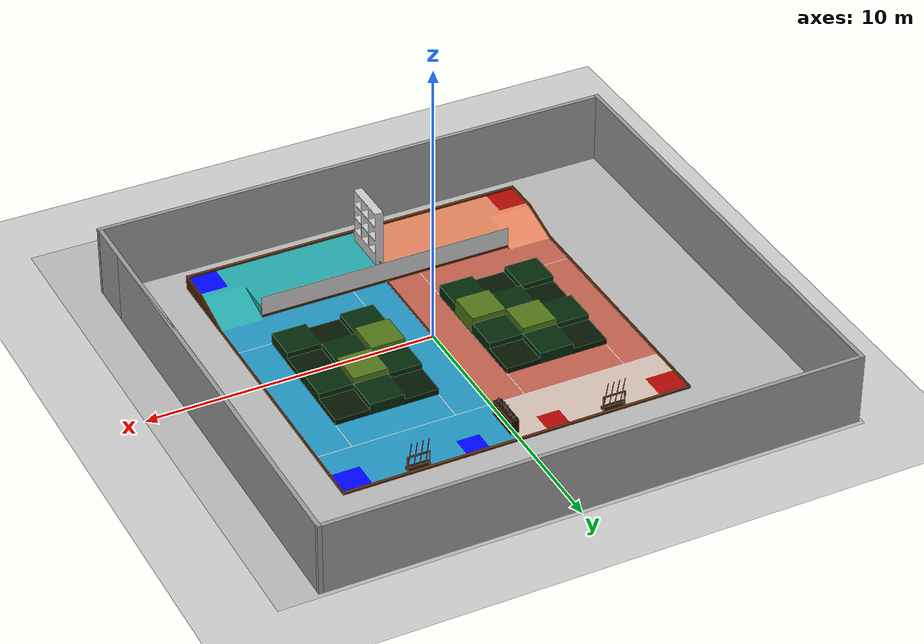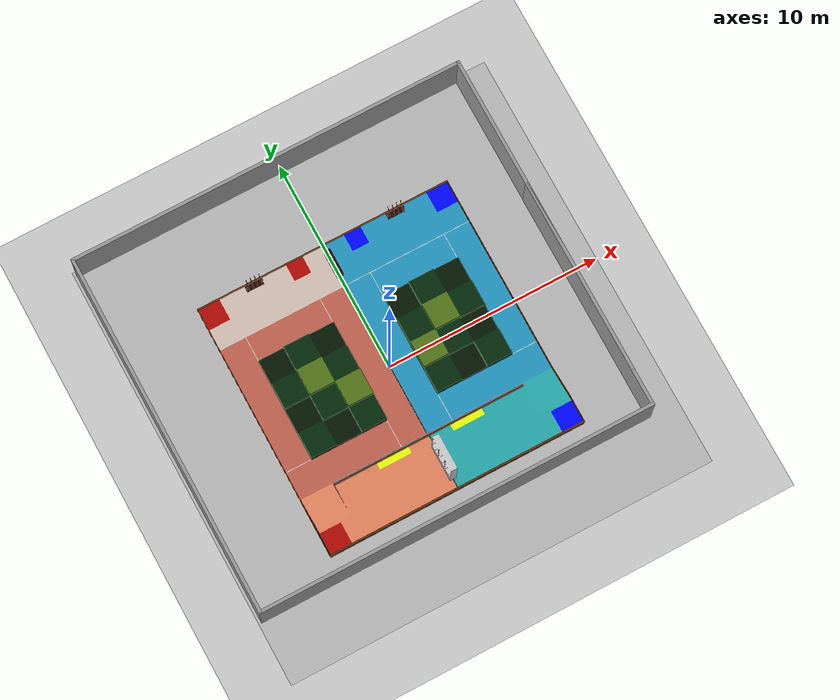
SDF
<sdf version="1.7">
 <world name="default">
  <light name="sun" type="directional">
   <pose>0 0 10 0 -0 0</pose>
   <diffuse>0.8 0.8 0.8 1</diffuse>
   <specular>0.2 0.2 0.2 1</specular>
   <attenuation>
    <range>1000</range>
    <constant>0.9</constant>
    <linear>0.01</linear>
    <quadratic>0.001</quadratic>
   </attenuation>
   <direction>-0.5 0.1 -0.9</direction>
   <spot><inner_angle>0</inner_angle><outer_angle>0</outer_angle><falloff>0</falloff></spot>
  </light>
  <model name="ground_plane">
   <static>1</static>
   <link name="link">
    <collision name="collision">
     <geometry><plane><normal>0 0 1</normal><size>100 100</size></plane></geometry>
     <surface><friction><ode><mu>100</mu><mu2>50</mu2></ode></friction></surface>
    </collision>
    <visual name="visual">
     <cast_shadows>0</cast_shadows>
     <geometry><plane><normal>0 0 1</normal><size>100 100</size></plane></geometry>
     <material>
      <script><uri>file://media/materials/scripts/gazebo.material</uri><name>Gazebo/Grey</name></script>
     </material>
    </visual>
   </link>
  </model>
  <gravity>0 0 -9.8</gravity>
  <magnetic_field>6e-06 2.3e-05 -4.2e-05</magnetic_field>
  <atmosphere type="adiabatic"/>
  <physics type="ode">
   <max_step_size>0.001</max_step_size>
   <real_time_factor>1</real_time_factor>
   <real_time_update_rate>1000</real_time_update_rate>
  </physics>
  <scene><ambient>0.4 0.4 0.4 1</ambient><background>0.7 0.7 0.7 1</background><shadows>1</shadows></scene>
  <audio><device>default</device></audio>
  <spherical_coordinates>
   <surface_model>EARTH_WGS84</surface_model>
   <latitude_deg>0</latitude_deg>
   <longitude_deg>0</longitude_deg>
   <elevation>0</elevation>
   <heading_deg>0</heading_deg>
  </spherical_coordinates>
  <model name="robocon2026_map_foreset">
   <link name="link_0">
    <inertial>
     <mass>1</mass>
     <inertia>
      <ixx>0.166667</ixx>
      <ixy>0</ixy>
      <ixz>0</ixz>
      <iyy>0.166667</iyy>
      <iyz>0</iyz>
      <izz>0.166667</izz>
     </inertia>
    </inertial>
    <visual name="visual">
     <pose>0 0 0.001 0 -0 0</pose>
     <geometry>
      <mesh>
       <uri>/home/sentry_ws/src/rm_simulation/pb_rm_simulation/world/xzx_gazebo/robocon2026map_without_foreset_new.dae</uri>
       <scale>1 1 1</scale>
      </mesh>
     </geometry>
    </visual>
    <collision name="collision">
     <geometry>
      <mesh>
       <uri>/home/sentry_ws/src/rm_simulation/pb_rm_simulation/world/xzx_gazebo/robocon2026map_without_foreset_new.dae</uri>
       <scale>1 1 1</scale>
      </mesh>
     </geometry>
     <surface>
      <friction>
       <ode><mu>1</mu><mu2>1</mu2><fdir1>0 0 0</fdir1><slip1>0</slip1><slip2>0</slip2></ode>
       <torsional>
        <coefficient>1</coefficient>
        <patch_radius>0</patch_radius>
        <surface_radius>0</surface_radius>
        <use_patch_radius>1</use_patch_radius>
        <ode><slip>0</slip></ode>
       </torsional>
      </friction>
      <bounce><restitution_coefficient>0</restitution_coefficient><threshold>1e+06</threshold></bounce>
      <contact>
       <collide_without_contact>0</collide_without_contact>
       <collide_without_contact_bitmask>1</collide_without_contact_bitmask>
       <collide_bitmask>1</collide_bitmask>
       <ode>
        <soft_cfm>0</soft_cfm>
        <soft_erp>0.2</soft_erp>
        <kp>1e+13</kp>
        <kd>1</kd>
        <max_vel>0.01</max_vel>
        <min_depth>0</min_depth>
       </ode>
       <bullet>
        <split_impulse>1</split_impulse>
        <split_impulse_penetration_threshold>-0.01</split_impulse_penetration_threshold>
        <soft_cfm>0</soft_cfm>
        <soft_erp>0.2</soft_erp>
        <kp>1e+13</kp>
        <kd>1</kd>
       </bullet>
      </contact>
     </surface>
    </collision>
   </link>
   <static>1</static>
   <pose>0.003916 0 0 0 -0 0</pose>
  </model>
  <model name="foreset">
   <link name="link_0">
    <inertial>
     <mass>1</mass>
     <inertia>
      <ixx>0.166667</ixx>
      <ixy>0</ixy>
      <ixz>0</ixz>
      <iyy>0.166667</iyy>
      <iyz>0</iyz>
      <izz>0.166667</izz>
     </inertia>
    </inertial>
    <visual name="visual">
     <geometry>
      <mesh>
       <uri>/home/sentry_ws/src/rm_simulation/pb_rm_simulation/world/xzx_gazebo/foreset.dae</uri>
       <scale>1 1 1</scale>
      </mesh>
     </geometry>
    </visual>
    <gravity>0</gravity>
   </link>
   <static>1</static>
  </model>
  <light name="user_directional_light_0" type="directional">
   <pose>-3.85205 -2.13375 1 0 -0 0</pose>
   <diffuse>0.5 0.5 0.5 1</diffuse>
   <specular>0.1 0.1 0.1 1</specular>
   <direction>0.1 0.1 -0.9</direction>
   <attenuation>
    <range>20</range>
    <constant>0.5</constant>
    <linear>0.01</linear>
    <quadratic>0.001</quadratic>
   </attenuation>
   <spot><inner_angle>0</inner_angle><outer_angle>0</outer_angle><falloff>0</falloff></spot>
  </light>
  <light name="user_directional_light_1" type="directional">
   <pose>-0.070215 -2.39227 1 0 -0 0</pose>
   <diffuse>0.5 0.5 0.5 1</diffuse>
   <specular>0.1 0.1 0.1 1</specular>
   <direction>0.1 0.1 -0.9</direction>
   <attenuation>
    <range>20</range>
    <constant>0.5</constant>
    <linear>0.01</linear>
    <quadratic>0.001</quadratic>
   </attenuation>
   <spot><inner_angle>0</inner_angle><outer_angle>0</outer_angle><falloff>0</falloff></spot>
  </light>
  <light name="user_directional_light_2" type="directional">
   <pose>-6.06643 4.19745 1 0 -0 0</pose>
   <diffuse>0.5 0.5 0.5 1</diffuse>
   <specular>0.1 0.1 0.1 1</specular>
   <direction>0.1 0.1 -0.9</direction>
   <attenuation>
    <range>20</range>
    <constant>0.5</constant>
    <linear>0.01</linear>
    <quadratic>0.001</quadratic>
   </attenuation>
   <spot><inner_angle>0</inner_angle><outer_angle>0</outer_angle><falloff>0</falloff></spot>
  </light>
  <light name="user_directional_light_3" type="directional">
   <pose>3.92443 2.06725 1 0 -0 0</pose>
   <diffuse>0.5 0.5 0.5 1</diffuse>
   <specular>0.1 0.1 0.1 1</specular>
   <direction>0.1 0.1 -0.9</direction>
   <attenuation>
    <range>20</range>
    <constant>0.5</constant>
    <linear>0.01</linear>
    <quadratic>0.001</quadratic>
   </attenuation>
   <spot><inner_angle>0</inner_angle><outer_angle>0</outer_angle><falloff>0</falloff></spot>
  </light>
  <light name="user_directional_light_4" type="directional">
   <pose>2.16386 0.236789 1 0 -0 0</pose>
   <diffuse>0.5 0.5 0.5 1</diffuse>
   <specular>0.1 0.1 0.1 1</specular>
   <direction>0.1 0.1 -0.9</direction>
   <attenuation>
    <range>20</range>
    <constant>0.5</constant>
    <linear>0.01</linear>
    <quadratic>0.001</quadratic>
   </attenuation>
   <spot><inner_angle>0</inner_angle><outer_angle>0</outer_angle><falloff>0</falloff></spot>
  </light>
  <light name="user_directional_light_5" type="directional">
   <pose>-3.64667 -0.882376 1 0 -0 0</pose>
   <diffuse>0.5 0.5 0.5 1</diffuse>
   <specular>0.1 0.1 0.1 1</specular>
   <direction>0.1 0.1 -0.9</direction>
   <attenuation>
    <range>20</range>
    <constant>0.5</constant>
    <linear>0.01</linear>
    <quadratic>0.001</quadratic>
   </attenuation>
   <spot><inner_angle>0</inner_angle><outer_angle>0</outer_angle><falloff>0</falloff></spot>
  </light>
  <light name="user_directional_light_6" type="directional">
   <pose>4.89497 -3.09271 1 0 -0 0</pose>
   <diffuse>0.5 0.5 0.5 1</diffuse>
   <specular>0.1 0.1 0.1 1</specular>
   <direction>0.1 0.1 -0.9</direction>
   <attenuation>
    <range>20</range>
    <constant>0.5</constant>
    <linear>0.01</linear>
    <quadratic>0.001</quadratic>
   </attenuation>
   <spot><inner_angle>0</inner_angle><outer_angle>0</outer_angle><falloff>0</falloff></spot>
  </light>
  <light name="user_directional_light_7" type="directional">
   <pose>-8.99379 -1.43183 1 0 -0 0</pose>
   <diffuse>0.5 0.5 0.5 1</diffuse>
   <specular>0.1 0.1 0.1 1</specular>
   <direction>0.1 0.1 -0.9</direction>
   <attenuation>
    <range>20</range>
    <constant>0.5</constant>
    <linear>0.01</linear>
    <quadratic>0.001</quadratic>
   </attenuation>
   <spot><inner_angle>0</inner_angle><outer_angle>0</outer_angle><falloff>0</falloff></spot>
  </light>
  <light name="user_directional_light_8" type="directional">
   <pose>-4.47359 6.54999 1 0 -0 0</pose>
   <diffuse>0.5 0.5 0.5 1</diffuse>
   <specular>0.1 0.1 0.1 1</specular>
   <direction>0.1 0.1 -0.9</direction>
   <attenuation>
    <range>20</range>
    <constant>0.5</constant>
    <linear>0.01</linear>
    <quadratic>0.001</quadratic>
   </attenuation>
   <spot><inner_angle>0</inner_angle><outer_angle>0</outer_angle><falloff>0</falloff></spot>
  </light>
  <light name="user_directional_light_9" type="directional">
   <pose>3.24846 9.05344 1 0 -0 0</pose>
   <diffuse>0.5 0.5 0.5 1</diffuse>
   <specular>0.1 0.1 0.1 1</specular>
   <direction>0.1 0.1 -0.9</direction>
   <attenuation>
    <range>20</range>
    <constant>0.5</constant>
    <linear>0.01</linear>
    <quadratic>0.001</quadratic>
   </attenuation>
   <spot><inner_angle>0</inner_angle><outer_angle>0</outer_angle><falloff>0</falloff></spot>
  </light>
  <light name="user_directional_light_10" type="directional">
   <pose>-78.226 100.892 1 0 -0 0</pose>
   <diffuse>0.5 0.5 0.5 1</diffuse>
   <specular>0.1 0.1 0.1 1</specular>
   <direction>0.1 0.1 -0.9</direction>
   <attenuation>
    <range>20</range>
    <constant>0.5</constant>
    <linear>0.01</linear>
    <quadratic>0.001</quadratic>
   </attenuation>
   <spot><inner_angle>0</inner_angle><outer_angle>0</outer_angle><falloff>0</falloff></spot>
  </light>
  <model name="wall">
   <pose>-0.616391 1.37146 0 0 -0 0</pose>
   <link name="Wall_10">
    <collision name="Wall_10_Collision">
     <geometry><box><size>15.25 0.15 2.5</size></box></geometry>
     <pose>0 0 1.25 0 -0 0</pose>
    </collision>
    <visual name="Wall_10_Visual">
     <pose>0 0 1.25 0 -0 0</pose>
     <geometry><box><size>15.25 0.15 2.5</size></box></geometry>
     <material>
      <script><uri>file://media/materials/scripts/gazebo.material</uri><name>Gazebo/Grey</name></script>
      <ambient>1 1 1 1</ambient>
     </material>
     <meta><layer>0</layer></meta>
    </visual>
    <pose>9.175 0.875 0 0 -0 1.5708</pose>
   </link>
   <link name="Wall_11">
    <collision name="Wall_11_Collision">
     <geometry><box><size>18.5 0.15 2.5</size></box></geometry>
     <pose>0 0 1.25 0 -0 0</pose>
    </collision>
    <visual name="Wall_11_Visual">
     <pose>0 0 1.25 0 -0 0</pose>
     <geometry><box><size>18.5 0.15 2.5</size></box></geometry>
     <material>
      <script><uri>file://media/materials/scripts/gazebo.material</uri><name>Gazebo/Grey</name></script>
      <ambient>1 1 1 1</ambient>
     </material>
     <meta><layer>0</layer></meta>
    </visual>
    <pose>0 8.425 0 0 -0 3.14159</pose>
   </link>
   <link name="Wall_12">
    <collision name="Wall_12_Collision">
     <geometry><box><size>17 0.15 2.5</size></box></geometry>
     <pose>0 0 1.25 0 -0 0</pose>
    </collision>
    <visual name="Wall_12_Visual">
     <pose>0 0 1.25 0 -0 0</pose>
     <geometry><box><size>17 0.15 2.5</size></box></geometry>
     <material>
      <script><uri>file://media/materials/scripts/gazebo.material</uri><name>Gazebo/Grey</name></script>
      <ambient>1 1 1 1</ambient>
     </material>
     <meta><layer>0</layer></meta>
    </visual>
    <pose>-9.175 -0 0 0 -0 -1.5708</pose>
   </link>
   <link name="Wall_13">
    <collision name="Wall_13_Collision">
     <geometry><box><size>18.5 0.15 2.5</size></box></geometry>
     <pose>0 0 1.25 0 -0 0</pose>
    </collision>
    <visual name="Wall_13_Visual">
     <pose>0 0 1.25 0 -0 0</pose>
     <geometry><box><size>18.5 0.15 2.5</size></box></geometry>
     <material>
      <script><uri>file://media/materials/scripts/gazebo.material</uri><name>Gazebo/Grey</name></script>
      <ambient>1 1 1 1</ambient>
     </material>
     <meta><layer>0</layer></meta>
    </visual>
    <pose>0 -8.425 0 0 -0 0</pose>
   </link>
   <link name="Wall_6">
    <collision name="Wall_6_Collision">
     <geometry><box><size>10.75 0.15 2.5</size></box></geometry>
     <pose>0 0 1.25 0 -0 0</pose>
    </collision>
    <visual name="Wall_6_Visual">
     <pose>0 0 1.25 0 -0 0</pose>
     <geometry><box><size>10.75 0.15 2.5</size></box></geometry>
     <material>
      <script><uri>file://media/materials/scripts/gazebo.material</uri><name>Gazebo/Grey</name></script>
      <ambient>1 1 1 1</ambient>
     </material>
     <meta><layer>0</layer></meta>
    </visual>
    <pose>9.1676 -2.9866 0 0 -0 1.5708</pose>
   </link>
   <static>1</static>
  </model>
 </world>
</sdf>
